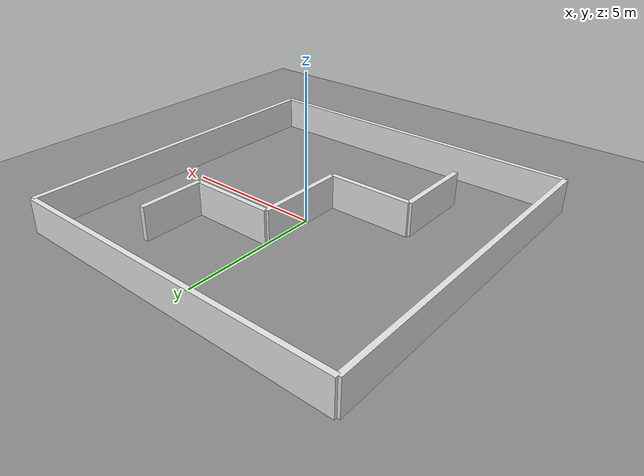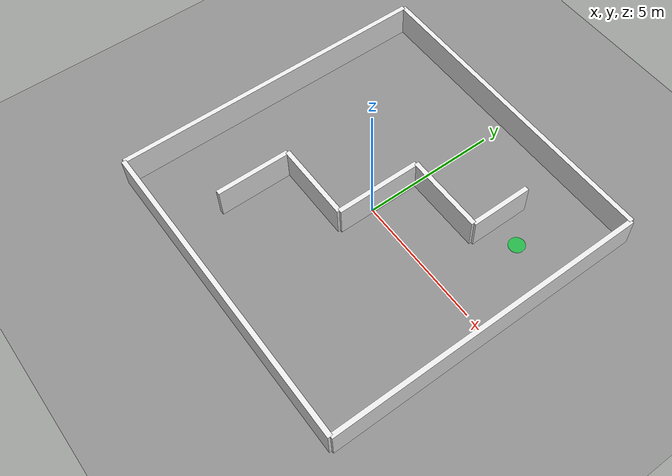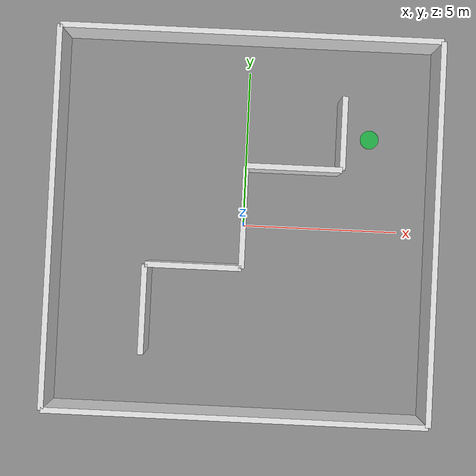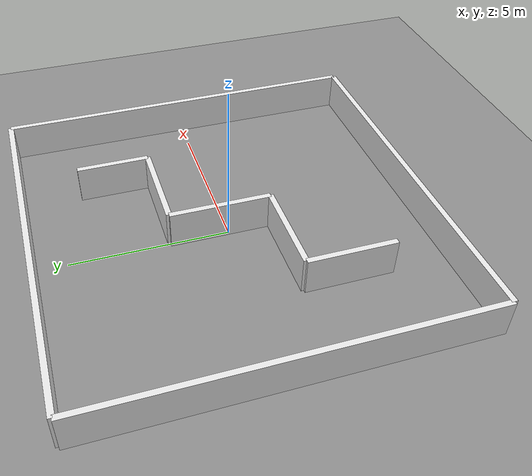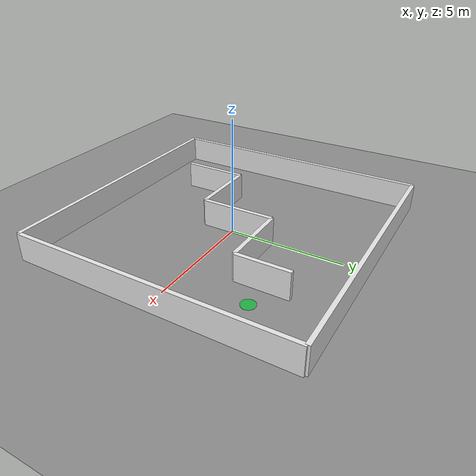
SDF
<sdf version="1.10">
 <world name="tugbot_maze_world">
  <plugin name="gz::sim::systems::Physics" filename="gz-sim-physics-system"/>
  <plugin name="gz::sim::systems::UserCommands" filename="gz-sim-user-commands-system"/>
  <plugin name="gz::sim::systems::SceneBroadcaster" filename="gz-sim-scene-broadcaster-system"/>
  <plugin name="gz::sim::systems::Sensors" filename="gz-sim-sensors-system">
   <render_engine>ogre2</render_engine>
  </plugin>
  <plugin name="gz::sim::systems::Imu" filename="gz-sim-imu-system"/>
  <scene>
   <shadows>false</shadows>
   <ambient>0.55 0.55 0.55 1</ambient>
   <background>0.70 0.72 0.74 1</background>
  </scene>
  <physics name="3ms" type="ode">
   <max_step_size>0.003</max_step_size>
   <real_time_factor>1</real_time_factor>
   <real_time_update_rate>1000</real_time_update_rate>
  </physics>
  <gravity>0 0 -9.8</gravity>
  <magnetic_field>5.5645e-06 2.28758e-05 -4.23884e-05</magnetic_field>
  <atmosphere type="adiabatic"/>
  <model name="ground_plane">
   <static>true</static>
   <link name="link">
    <collision name="collision">
     <geometry><plane><normal>0 0 1</normal><size>1 1</size></plane></geometry>
    </collision>
    <visual name="visual">
     <geometry><plane><normal>0 0 1</normal><size>20 20</size></plane></geometry>
     <material>
      <ambient>0.55 0.55 0.55 1</ambient>
      <diffuse>0.55 0.55 0.55 1</diffuse>
      <specular>0.2 0.2 0.2 1</specular>
     </material>
    </visual>
   </link>
  </model>
  <model name="maze_exit_marker">
   <static>true</static>
   <pose>4.0 3.0 0.01 0 0 0</pose>
   <link name="link">
    <visual name="visual">
     <geometry><cylinder><radius>0.30</radius><length>0.02</length></cylinder></geometry>
     <material><ambient>0 0.8 0.2 0.7</ambient><diffuse>0 0.8 0.2 0.7</diffuse></material>
    </visual>
   </link>
  </model>
  <model name="maze_wall_bottom">
   <static>true</static>
   <pose>0.000 -6.000 0.600 0 0 0</pose>
   <link name="link">
    <collision name="collision"><geometry><box><size>12.000 0.180 1.200</size></box></geometry></collision>
    <visual name="visual">
     <geometry><box><size>12.000 0.180 1.200</size></box></geometry>
     <material>
      <ambient>0.9 0.9 0.9 1</ambient>
      <diffuse>0.9 0.9 0.9 1</diffuse>
      <specular>0.2 0.2 0.2 1</specular>
     </material>
    </visual>
   </link>
  </model>
  <model name="maze_wall_top">
   <static>true</static>
   <pose>0.000 6.000 0.600 0 0 0</pose>
   <link name="link">
    <collision name="collision"><geometry><box><size>12.000 0.180 1.200</size></box></geometry></collision>
    <visual name="visual">
     <geometry><box><size>12.000 0.180 1.200</size></box></geometry>
     <material>
      <ambient>0.9 0.9 0.9 1</ambient>
      <diffuse>0.9 0.9 0.9 1</diffuse>
      <specular>0.2 0.2 0.2 1</specular>
     </material>
    </visual>
   </link>
  </model>
  <model name="maze_wall_left">
   <static>true</static>
   <pose>-6.000 0.000 0.600 0 0 0</pose>
   <link name="link">
    <collision name="collision"><geometry><box><size>0.180 12.000 1.200</size></box></geometry></collision>
    <visual name="visual">
     <geometry><box><size>0.180 12.000 1.200</size></box></geometry>
     <material>
      <ambient>0.9 0.9 0.9 1</ambient>
      <diffuse>0.9 0.9 0.9 1</diffuse>
      <specular>0.2 0.2 0.2 1</specular>
     </material>
    </visual>
   </link>
  </model>
  <model name="maze_wall_right">
   <static>true</static>
   <pose>6.000 0.000 0.600 0 0 0</pose>
   <link name="link">
    <collision name="collision"><geometry><box><size>0.180 12.000 1.200</size></box></geometry></collision>
    <visual name="visual">
     <geometry><box><size>0.180 12.000 1.200</size></box></geometry>
     <material>
      <ambient>0.9 0.9 0.9 1</ambient>
      <diffuse>0.9 0.9 0.9 1</diffuse>
      <specular>0.2 0.2 0.2 1</specular>
     </material>
    </visual>
   </link>
  </model>
  <model name="maze_wall_i01">
   <static>true</static>
   <pose>-3.000 -2.750 0.600 0 0 0</pose>
   <link name="link">
    <collision name="collision"><geometry><box><size>0.180 2.800 1.200</size></box></geometry></collision>
    <visual name="visual">
     <geometry><box><size>0.180 2.800 1.200</size></box></geometry>
     <material>
      <ambient>0.9 0.9 0.9 1</ambient>
      <diffuse>0.9 0.9 0.9 1</diffuse>
      <specular>0.2 0.2 0.2 1</specular>
     </material>
    </visual>
   </link>
  </model>
  <model name="maze_wall_i02">
   <static>true</static>
   <pose>-1.500 -1.350 0.600 0 0 0</pose>
   <link name="link">
    <collision name="collision"><geometry><box><size>3.000 0.180 1.200</size></box></geometry></collision>
    <visual name="visual">
     <geometry><box><size>3.000 0.180 1.200</size></box></geometry>
     <material>
      <ambient>0.9 0.9 0.9 1</ambient>
      <diffuse>0.9 0.9 0.9 1</diffuse>
      <specular>0.2 0.2 0.2 1</specular>
     </material>
    </visual>
   </link>
  </model>
  <model name="maze_wall_i03">
   <static>true</static>
   <pose>0.000 0.250 0.600 0 0 0</pose>
   <link name="link">
    <collision name="collision"><geometry><box><size>0.180 3.200 1.200</size></box></geometry></collision>
    <visual name="visual">
     <geometry><box><size>0.180 3.200 1.200</size></box></geometry>
     <material>
      <ambient>0.9 0.9 0.9 1</ambient>
      <diffuse>0.9 0.9 0.9 1</diffuse>
      <specular>0.2 0.2 0.2 1</specular>
     </material>
    </visual>
   </link>
  </model>
  <model name="maze_wall_i04">
   <static>true</static>
   <pose>1.500 1.850 0.600 0 0 0</pose>
   <link name="link">
    <collision name="collision"><geometry><box><size>3.000 0.180 1.200</size></box></geometry></collision>
    <visual name="visual">
     <geometry><box><size>3.000 0.180 1.200</size></box></geometry>
     <material>
      <ambient>0.9 0.9 0.9 1</ambient>
      <diffuse>0.9 0.9 0.9 1</diffuse>
      <specular>0.2 0.2 0.2 1</specular>
     </material>
    </visual>
   </link>
  </model>
  <model name="maze_wall_i05">
   <static>true</static>
   <pose>3.000 3.000 0.600 0 0 0</pose>
   <link name="link">
    <collision name="collision"><geometry><box><size>0.180 2.300 1.200</size></box></geometry></collision>
    <visual name="visual">
     <geometry><box><size>0.180 2.300 1.200</size></box></geometry>
     <material>
      <ambient>0.9 0.9 0.9 1</ambient>
      <diffuse>0.9 0.9 0.9 1</diffuse>
      <specular>0.2 0.2 0.2 1</specular>
     </material>
    </visual>
   </link>
  </model>
  <light name="sun" type="directional">
   <cast_shadows>false</cast_shadows>
   <pose>0 0 10 0 0 0</pose>
   <diffuse>0.8 0.8 0.8 1</diffuse>
   <specular>0.2 0.2 0.2 1</specular>
   <attenuation>
    <range>1000</range>
    <constant>0.9</constant>
    <linear>0.01</linear>
    <quadratic>0.001</quadratic>
   </attenuation>
   <direction>-0.5 0.1 -0.9</direction>
  </light>
 </world>
</sdf>
